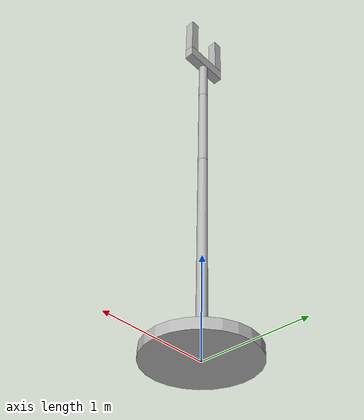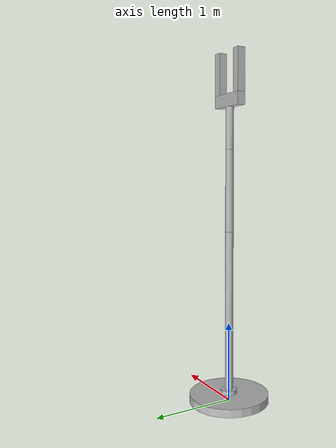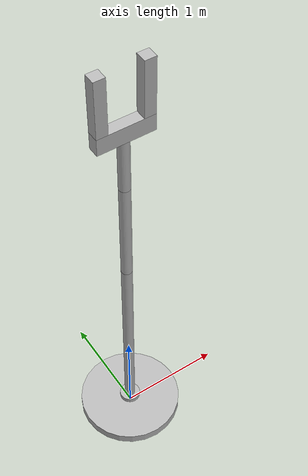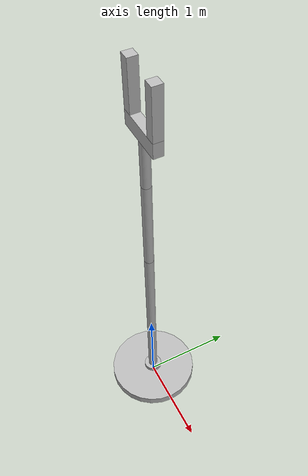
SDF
<?xml version='1.0'?>
<sdf version='1.4'>
  <model name="my_robot">
    <static>false</static>
    <link name='base'>
      <pose>0 0 .05 0 0 0</pose>
      <inertial>
        <mass>100.0</mass>
      </inertial>
      <collision name='collision'>
        <geometry>
          <cylinder>
            <radius>.5</radius>
            <length>.1</length>
          </cylinder>
        </geometry>
      </collision>

      <visual name='visual'>
        <geometry>
          <cylinder>
            <radius>.5</radius>
            <length>.1</length>
          </cylinder>
        </geometry>
      </visual>
    </link>
    <link name='arm1'>
      <pose>0 0 .125 0 0 0</pose>
        <inertial>
          <mass>0.05</mass>
        </inertial>
        <collision name='collision'>
          <geometry>
            <cylinder>
              <radius>.1</radius>
              <length>.05</length>
            </cylinder>
          </geometry>
        </collision>

        <visual name='visual'>
          <geometry>
            <cylinder>
              <radius>.1</radius>
              <length>.05</length>
            </cylinder>
          </geometry>
        </visual>
    </link>
    <link name='arm2'>
      <pose>0 0 1.15 0 0 0</pose>
      <inertial>
        <mass>1.0</mass>
      </inertial>
      <gravity>0</gravity>
      <collision name='collision'>
        <geometry>
          <cylinder>
            <radius>.05</radius>
            <length>2.0</length>
          </cylinder>
        </geometry>
      </collision>

      <visual name='visual'>
        <geometry>
          <cylinder>
            <radius>.05</radius>
            <length>2.0</length>
          </cylinder>
        </geometry>
      </visual>
    </link>
    <joint type="revolute" name="base_arm1_joint">
      <pose>0 0 -0.025 0 0 0</pose>
      <child>arm1</child>
      <parent>base</parent>
      <axis>
        <xyz>0 0 1</xyz>
      </axis>
    </joint>
    <joint type="revolute" name="arm1_arm2_joint">

      <pose>0 0 -1 0 0 0</pose>
      <child>arm2</child>
      <parent>arm1</parent>
      <axis>
        <xyz>1 0 0</xyz>
        <dynamics>
          <damping>1.0</damping>
          <friction>0.3</friction>
          <limit>
            <lower>1.0</lower>
            <upper>1.0</upper>
            <effort>40</effort>
            <velocity>1.0</velocity>
            </limit>>
        </dynamics>

      </axis>
    </joint>
    <link name='arm3'>
      <pose>0 0 2.65 0 0 0</pose>
      <inertial>
        <mass>1.0</mass>
      </inertial>
      <gravity>0</gravity>
      <collision name='collision'>
        <geometry>
          <cylinder>
            <radius>0.05</radius>
            <length>1.0</length>
          </cylinder>
        </geometry>
      </collision>

      <visual name='visual'>
        <geometry>
          <cylinder>
            <radius>0.05</radius>
            <length>1.0</length>
          </cylinder>
        </geometry>
      </visual>
    </link>
    <joint name="arm2_arm3_joint" type="revolute">
      <parent>arm2</parent>
      <child>arm3</child>
      <pose>0 0 -0.5 0 0 0</pose>
      <axis>
        <xyz>1 0 0</xyz>
        <dynamics>
          <damping>1.0</damping>
          <friction>0.3</friction>
          <limit>
            <lower>1.0</lower>
            <upper>1.0</upper>
            <effort>40</effort>
            <velocity>1.0</velocity>
            </limit>>
        </dynamics>

      </axis>
    </joint>

    <link name='arm4'>
      <pose>0 0 3.4 0 0 0</pose>
      <inertial>
        <mass>1.0</mass>
      </inertial>
      <gravity>0</gravity>
      <collision name='collision'>
        <geometry>
          <cylinder>
            <radius>0.05</radius>
            <length>0.5</length>
          </cylinder>
        </geometry>
      </collision>

      <visual name='visual'>
        <geometry>
          <cylinder>
            <radius>0.05</radius>
            <length>0.5</length>
          </cylinder>
        </geometry>
      </visual>
    </link>

    <joint name="arm3_arm4_joint" type="revolute">
      <parent>arm3</parent>
      <child>arm4</child>
      <pose>0 0 -0.25 0 0 0</pose>
      <axis>
        <xyz>1 0 0</xyz>
        <dynamics>
          <damping>1.0</damping>
          <friction>0.3</friction>
          <limit>
            <lower>1.0</lower>
            <upper>1.0</upper>
            <effort>40</effort>
            <velocity>1.0</velocity>
            </limit>>
        </dynamics>

      </axis>
    </joint>

    <link name='arm5'>
      <pose>0 0 3.725 0 0 0</pose>
      <inertial>
        <mass>1.0</mass>
      </inertial>
      <gravity>0</gravity>
      <visual name="visual">
				<geometry>
					<box>
						<size>0.5 0.1 0.15</size>
					</box>
				</geometry>
			</visual>
			<collision name="collision">
				<geometry>
					<box>
						<size>0.5 0.1 0.15</size>
					</box>
				</geometry>
			</collision>

    </link>
    <joint name="arm4_arm5_joint" type="revolute">
			<pose>0 0 -0.075 0 0 0</pose>
			<child>arm5</child>
			<parent>arm4</parent>
      <axis>
        <xyz>1 0 0</xyz>
        <dynamics>
          <damping>1.0</damping>
          <friction>0.3</friction>
          <limit>
            <lower>1.0</lower>
            <upper>1.0</upper>
            <effort>40</effort>
            <velocity>1.0</velocity>
            </limit>>
        </dynamics>

      </axis>
		</joint>
    <link name='arm6'>
      <pose>0.2 0 4.05 0 0 0</pose>
      <inertial>
        <mass>1.0</mass>
      </inertial>
      <gravity>0</gravity>
      <visual name="visual">
				<geometry>
					<box>
						<size>0.1 0.1 0.5</size>
					</box>
				</geometry>
			</visual>
			<collision name="collision">
				<geometry>
					<box>
						<size>0.1 0.1 0.5</size>
					</box>
				</geometry>
			</collision>
    </link>

    <joint name="arm5_arm6_joint" type="revolute">
			<pose>0 0 -0.25 0 0 0</pose>
			<child>arm6</child>
			<parent>arm5</parent>
      <axis>
        <xyz>0 0 1</xyz>
        <dynamics>
          <damping>1.0</damping>
          <friction>0.3</friction>
          <limit>
            <lower>1.0</lower>
            <upper>1.0</upper>
            <effort>40</effort>
            <velocity>1.0</velocity>
            </limit>>
        </dynamics>

      </axis>
		</joint>
    <link name='arm7'>
      <pose>-0.2 0 4.05 0 0 0</pose>
      <inertial>
        <mass>1.0</mass>
      </inertial>
      <gravity>0</gravity>
      <visual name="visual">
				<geometry>
					<box>
						<size>0.1 0.1 0.5</size>
					</box>
				</geometry>
			</visual>
			<collision name="collision">
				<geometry>
					<box>
						<size>0.1 0.1 0.5</size>
					</box>
				</geometry>
			</collision>

    </link>
    <joint name="arm5_arm7_joint" type="revolute">
			<pose>0 0 -0.25 0 0 0</pose>
			<child>arm7</child>
			<parent>arm5</parent>
      <axis>
        <xyz>0 0 1</xyz>
        <dynamics>
          <damping>1.0</damping>
          <friction>0.3</friction>
          <limit>
            <lower>1.0</lower>
            <upper>1.0</upper>
            <effort>40</effort>
            <velocity>1.0</velocity>
            </limit>>
        </dynamics>

      </axis>
		</joint>

    <plugin name="arm_control" filename="libarm_gazebo.so" />

  </model>
</sdf>
